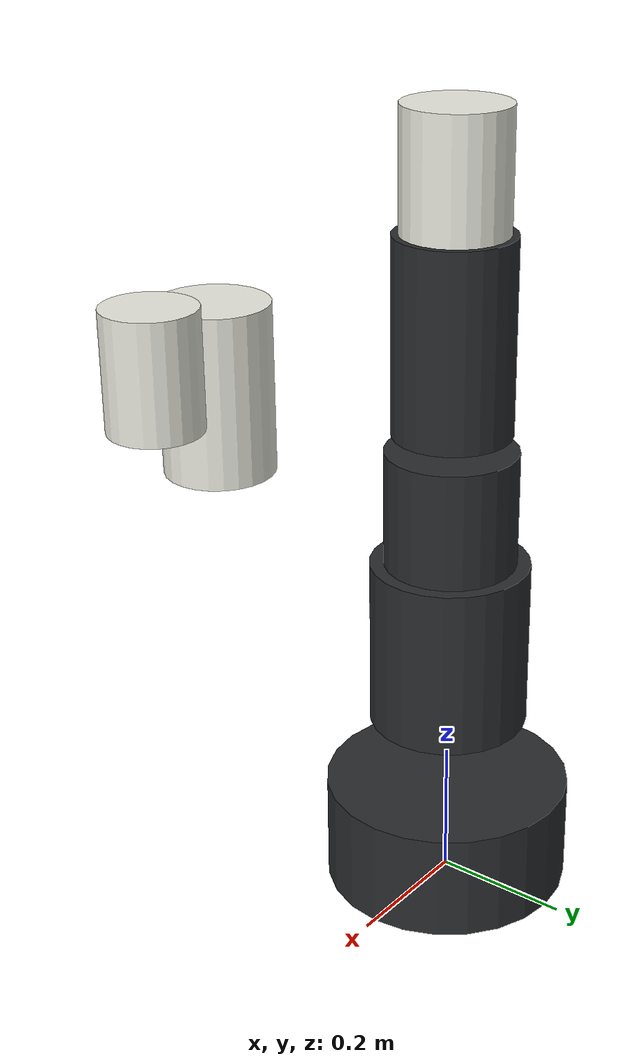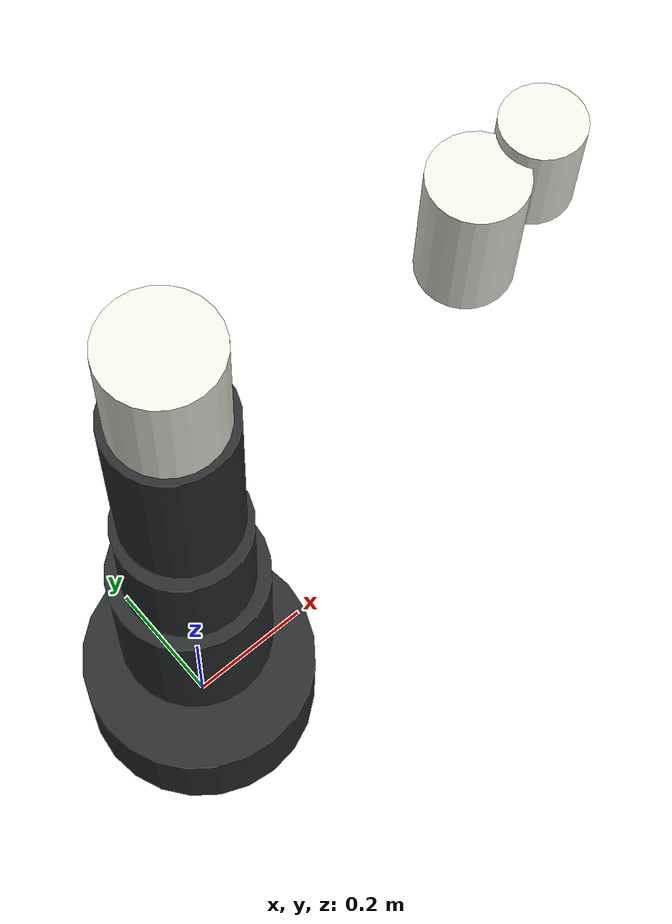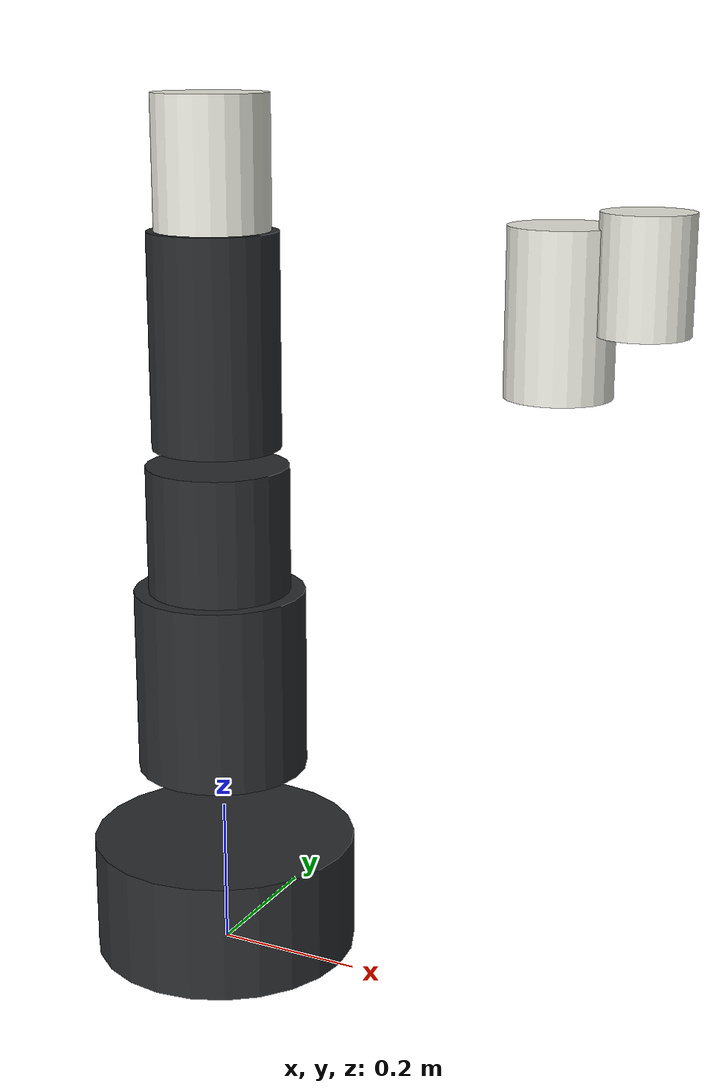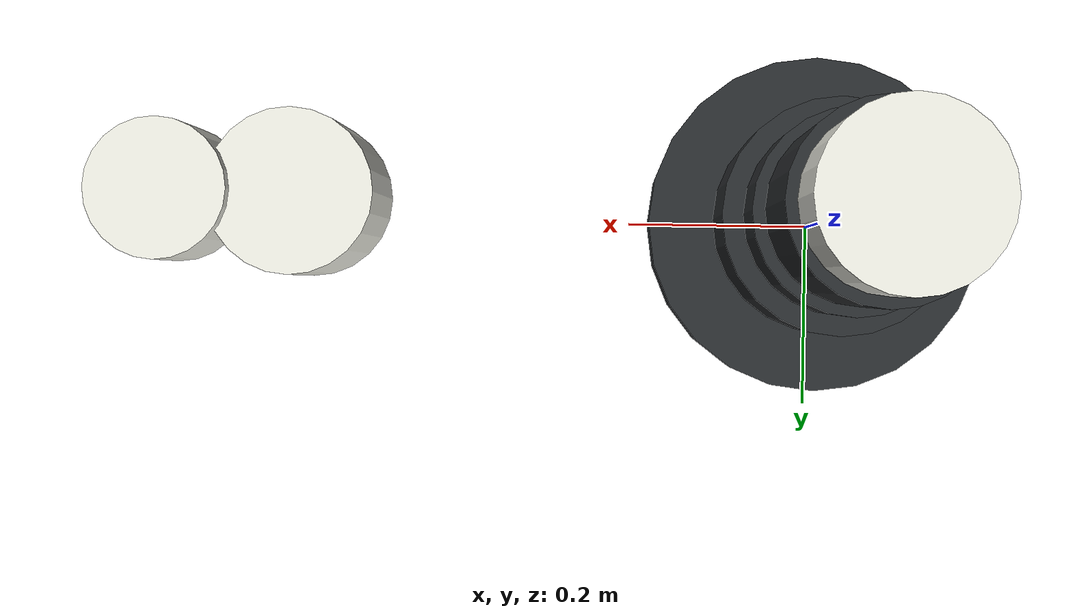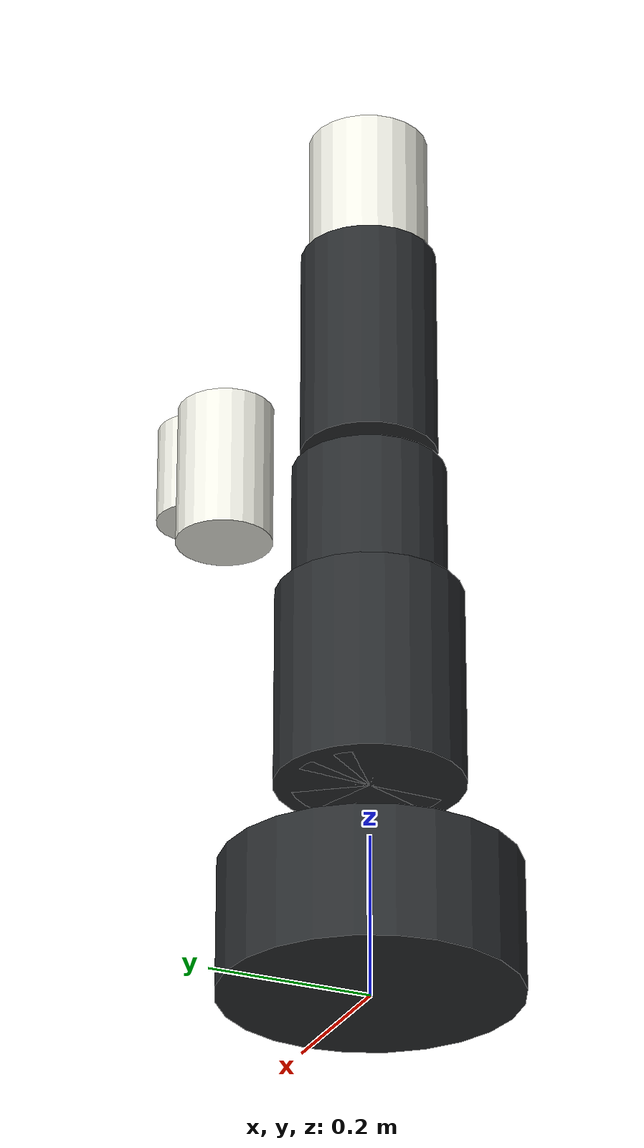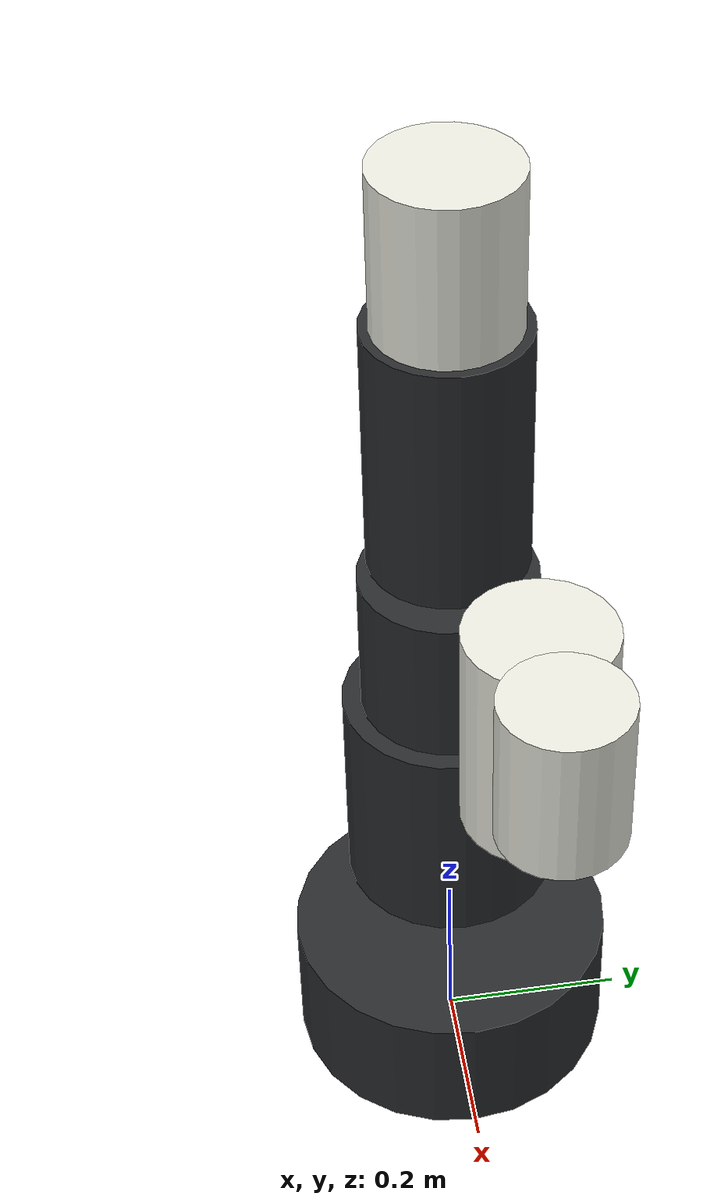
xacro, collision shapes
<?xml version="1.0"?>
<robot name="gofa" xmlns:xacro="http://www.ros.org/wiki/xacro">
  <xacro:arg name="use_fake_hardware" default="true"/>

  <material name="abb_white">
    <color rgba="0.92 0.92 0.88 1.0"/>
  </material>
  <material name="abb_dark">
    <color rgba="0.16 0.17 0.18 1.0"/>
  </material>
  <material name="abb_red">
    <color rgba="1.0 0.05 0.04 1.0"/>
  </material>

  <xacro:macro name="mesh_link" params="name mesh color collision_radius collision_length">
    <link name="${name}">
      <visual>
        <geometry>
          <mesh filename="package://gofa_description/meshes/crb15000_5_95/visual/${mesh}"/>
        </geometry>
        <material name="${color}"/>
      </visual>
      <collision>
        <origin xyz="0 0 ${collision_length / 2}" rpy="0 0 0"/>
        <geometry>
          <cylinder radius="${collision_radius}" length="${collision_length}"/>
        </geometry>
      </collision>
      <inertial>
        <origin xyz="0 0 ${collision_length / 2}" rpy="0 0 0"/>
        <mass value="1.0"/>
        <inertia ixx="0.01" ixy="0" ixz="0" iyy="0.01" iyz="0" izz="0.01"/>
      </inertial>
    </link>
  </xacro:macro>

  <link name="world"/>

  <link name="base_link">
    <visual>
      <geometry>
        <mesh filename="package://gofa_description/meshes/crb15000_5_95/visual/base_link.stl"/>
      </geometry>
      <material name="abb_dark"/>
    </visual>
    <collision>
      <origin xyz="0 0 0.08" rpy="0 0 0"/>
      <geometry>
        <cylinder radius="0.18" length="0.16"/>
      </geometry>
    </collision>
    <inertial>
      <origin xyz="0 0 0.08" rpy="0 0 0"/>
      <mass value="5.0"/>
      <inertia ixx="0.05" ixy="0" ixz="0" iyy="0.05" iyz="0" izz="0.05"/>
    </inertial>
  </link>

  <joint name="world-base_link" type="fixed">
    <parent link="world"/>
    <child link="base_link"/>
  </joint>

  <xacro:mesh_link name="link_1" mesh="link_1.stl" color="abb_dark" collision_radius="0.115" collision_length="0.25"/>
  <xacro:mesh_link name="link_2" mesh="link_2.stl" color="abb_dark" collision_radius="0.095" collision_length="0.42"/>
  <xacro:mesh_link name="link_3" mesh="link_3.stl" color="abb_dark" collision_radius="0.085" collision_length="0.28"/>
  <xacro:mesh_link name="link_4" mesh="link_4.stl" color="abb_white" collision_radius="0.075" collision_length="0.34"/>
  <xacro:mesh_link name="link_5" mesh="link_5.stl" color="abb_white" collision_radius="0.065" collision_length="0.20"/>
  <xacro:mesh_link name="link_6" mesh="link_6.stl" color="abb_white" collision_radius="0.055" collision_length="0.14"/>

  <link name="flange"/>
  <link name="tool0"/>

  <joint type="revolute" name="joint_1">
    <origin xyz="0 0 0.265" rpy="0 0 0"/>
    <axis xyz="0 0 1"/>
    <parent link="base_link"/>
    <child link="link_1"/>
    <limit effort="80" lower="${radians(-180)}" upper="${radians(180)}" velocity="${radians(125)}"/>
  </joint>
  <joint type="revolute" name="joint_2">
    <origin xyz="0 0 0" rpy="0 0 0"/>
    <axis xyz="0 1 0"/>
    <parent link="link_1"/>
    <child link="link_2"/>
    <limit effort="80" lower="${radians(-180)}" upper="${radians(180)}" velocity="${radians(125)}"/>
  </joint>
  <joint type="revolute" name="joint_3">
    <origin xyz="0 0 0.444" rpy="0 0 0"/>
    <axis xyz="0 1 0"/>
    <parent link="link_2"/>
    <child link="link_3"/>
    <limit effort="80" lower="${radians(-225)}" upper="${radians(85)}" velocity="${radians(140)}"/>
  </joint>
  <joint type="revolute" name="joint_4">
    <origin xyz="0 0 0.110" rpy="0 0 0"/>
    <axis xyz="1 0 0"/>
    <parent link="link_3"/>
    <child link="link_4"/>
    <limit effort="40" lower="${radians(-180)}" upper="${radians(180)}" velocity="${radians(200)}"/>
  </joint>
  <joint type="revolute" name="joint_5">
    <origin xyz="0.470 0 0" rpy="0 0 0"/>
    <axis xyz="0 1 0"/>
    <parent link="link_4"/>
    <child link="link_5"/>
    <limit effort="40" lower="${radians(-180)}" upper="${radians(180)}" velocity="${radians(200)}"/>
  </joint>
  <joint type="revolute" name="joint_6">
    <origin xyz="0.101 0 0.080" rpy="0 0 0"/>
    <axis xyz="1 0 0"/>
    <parent link="link_5"/>
    <child link="link_6"/>
    <limit effort="20" lower="${radians(-180)}" upper="${radians(180)}" velocity="${radians(200)}"/>
  </joint>

  <joint type="fixed" name="joint_6-flange">
    <origin xyz="0 0 0" rpy="0 0 0"/>
    <parent link="link_6"/>
    <child link="flange"/>
  </joint>
  <joint name="flange-tool0" type="fixed">
    <origin xyz="0 0 0" rpy="0 ${radians(90)} 0"/>
    <parent link="flange"/>
    <child link="tool0"/>
  </joint>

  <ros2_control name="GoFaFakeSystem" type="system">
    <hardware>
      <plugin>mock_components/GenericSystem</plugin>
      <param name="calculate_dynamics">false</param>
    </hardware>
    <joint name="joint_1">
      <command_interface name="position"/>
      <state_interface name="position"><param name="initial_value">0.0</param></state_interface>
      <state_interface name="velocity"/>
    </joint>
    <joint name="joint_2">
      <command_interface name="position"/>
      <state_interface name="position"><param name="initial_value">0.0</param></state_interface>
      <state_interface name="velocity"/>
    </joint>
    <joint name="joint_3">
      <command_interface name="position"/>
      <state_interface name="position"><param name="initial_value">0.0</param></state_interface>
      <state_interface name="velocity"/>
    </joint>
    <joint name="joint_4">
      <command_interface name="position"/>
      <state_interface name="position"><param name="initial_value">0.0</param></state_interface>
      <state_interface name="velocity"/>
    </joint>
    <joint name="joint_5">
      <command_interface name="position"/>
      <state_interface name="position"><param name="initial_value">0.0</param></state_interface>
      <state_interface name="velocity"/>
    </joint>
    <joint name="joint_6">
      <command_interface name="position"/>
      <state_interface name="position"><param name="initial_value">0.0</param></state_interface>
      <state_interface name="velocity"/>
    </joint>
  </ros2_control>
</robot>
